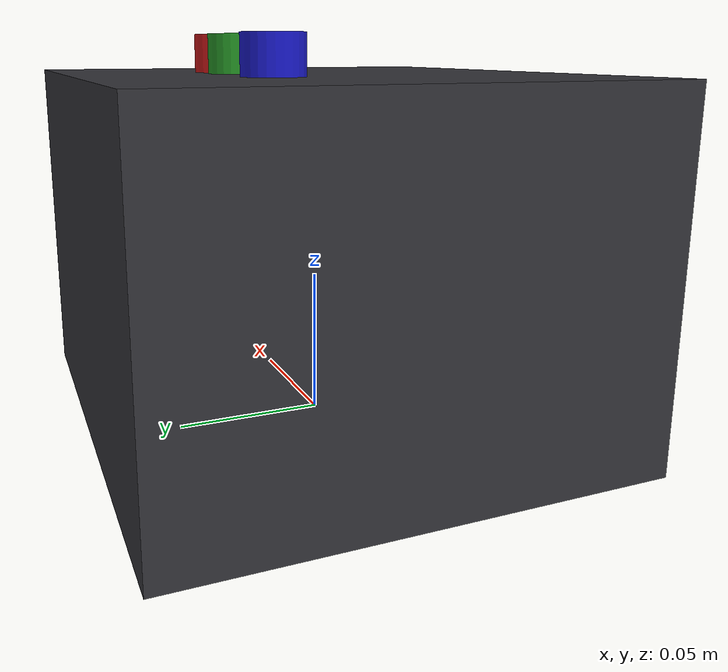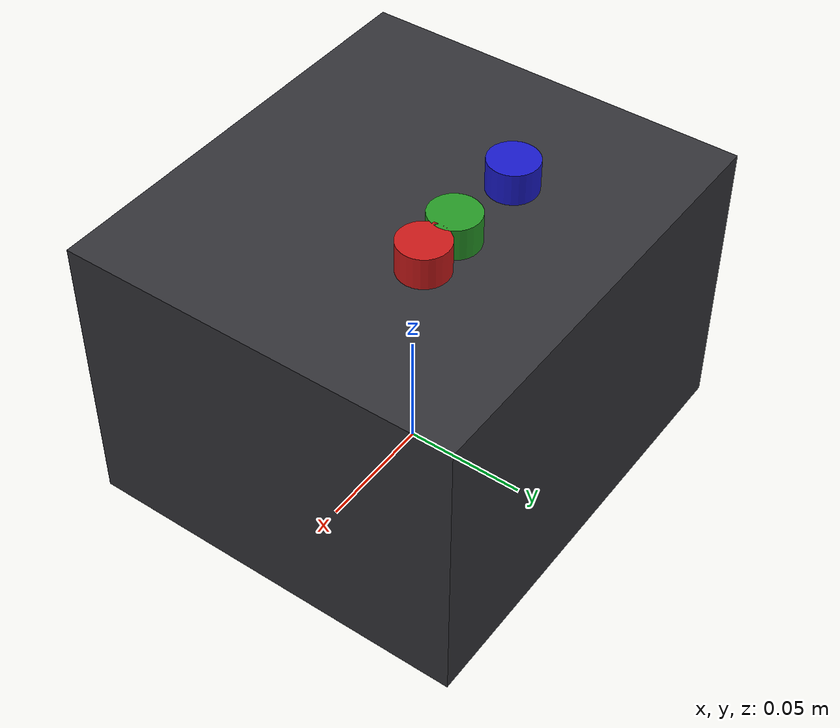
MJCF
<?xml version="1.0" encoding="utf-8"?>
<mujoco model="oscilloscope">
  <compiler angle="radian" autolimits="true"/>
  <default>
    <default class="body"><geom contype="1" conaffinity="1"/></default>
  </default>
  <worldbody>
    <body name="base">
      <geom type="box" size="0.09 0.08 0.06" pos="0 0 0.06" rgba="0.2 0.2 0.22 1" class="body"/>
      <geom type="box" size="0.027 0.004 0.015" pos="-0.045 -0.07200000000000001 0.09" rgba="0.1 0.9 0.3 1" class="body"/>
      <geom type="cylinder" size="0.01 0.008" pos="-0.027 0.024 0.125" rgba="0.1 0.1 0.8 1" class="body"/>
      <geom type="cylinder" size="0.01 0.008" pos="0.009 0.024 0.125" rgba="0.15 0.6 0.15 1" class="body"/>
      <body name="knob" pos="0.027 0.024 0.125">
        <joint name="knob_joint" type="hinge" axis="0 0 1" range="-3.14159 3.14159" damping="0.3" frictionloss="0.1"/>
  <geom type="cylinder" size="0.01 0.008" pos="0 0 0" rgba="0.8 0.1 0.1 1" class="body"/>
      </body>
    </body>
  </worldbody>
</mujoco>
